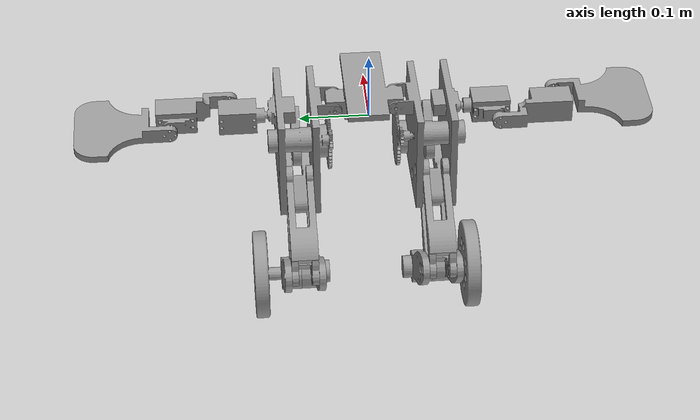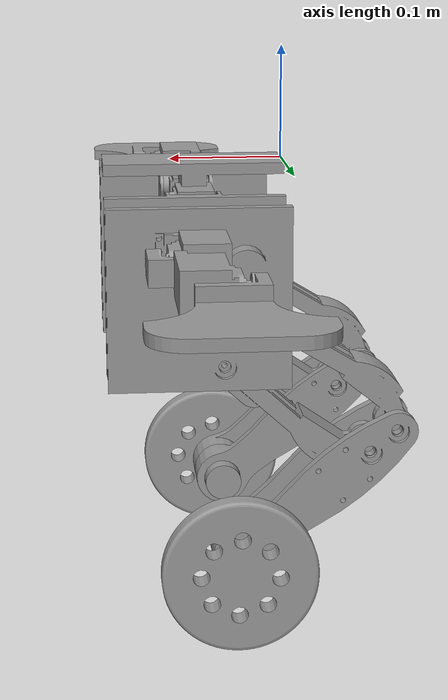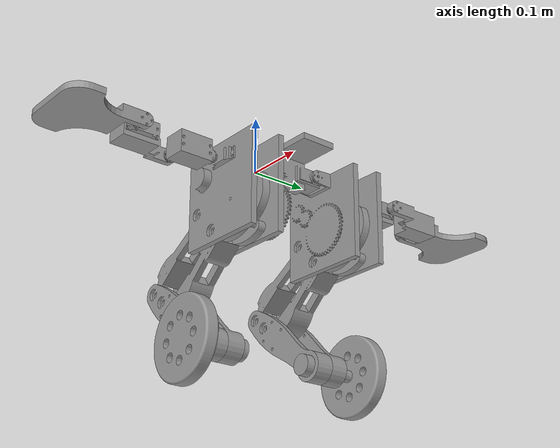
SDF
<sdf version='1.7'>
  <model name='jumpbot'>
    <link name='base_link'>
      <inertial>
        <pose>0.080939 -0 -0.026812 0 -0 0</pose>
        <mass>0.21719</mass>
        <inertia>
          <ixx>6.94e-05</ixx>
          <ixy>8.13532e-21</ixy>
          <ixz>4.23516e-21</ixz>
          <iyy>0.000141175</iyy>
          <iyz>-2.15898e-20</iyz>
          <izz>0.000162678</izz>
        </inertia>
      </inertial>
      <collision name='base_link_collision'>
        <pose>0 0 0 0 -0 0</pose>
        <geometry>
          <mesh>
            <scale>1 1 1</scale>
            <uri>/home/mosiwon/catkin_ws/src/Jumpbot_Simulation/jumpbot_description/meshes/base_link.STL</uri>
          </mesh>
        </geometry>
        <surface>
          <contact>
            <ode/>
          </contact>
          <friction>
            <ode>
              <mu>0.2</mu>
              <mu2>0.2</mu2>
            </ode>
          </friction>
        </surface>
      </collision>
      <visual name='base_link_visual'>
        <pose>0 0 0 0 -0 0</pose>
        <geometry>
          <mesh>
            <scale>1 1 1</scale>
            <uri>/home/mosiwon/catkin_ws/src/Jumpbot_Simulation/jumpbot_description/meshes/base_link.STL</uri>
          </mesh>
        </geometry>
        <material>
          <script>
            <name>Gazebo/Grey</name>
            <uri>file://media/materials/scripts/gazebo.material</uri>
          </script>
        </material>
      </visual>
    </link>
    <joint name='L_baselink_joint' type='revolute'>
      <pose relative_to='base_link'>0.1065 0.045 -0.033 1.5708 0 -1.5708</pose>
      <parent>base_link</parent>
      <child>L_baselink</child>
      <axis>
        <xyz>0 0 1</xyz>
        <limit>
          <lower>-1.5707</lower>
          <upper>1.5707</upper>
          <effort>1</effort>
          <velocity>1</velocity>
        </limit>
        <dynamics>
          <spring_reference>0</spring_reference>
          <spring_stiffness>0</spring_stiffness>
        </dynamics>
      </axis>
    </joint>
    <link name='L_baselink'>
      <pose relative_to='L_baselink_joint'>0 0 0 0 -0 0</pose>
      <inertial>
        <pose>-0.053411 -0.054639 0.03305 0 -0 0</pose>
        <mass>0.573132</mass>
        <inertia>
          <ixx>0.00103571</ixx>
          <ixy>5.37563e-07</ixy>
          <ixz>6.83333e-07</ixz>
          <iyy>0.000616027</iyy>
          <iyz>2.40896e-06</iyz>
          <izz>0.000613586</izz>
        </inertia>
      </inertial>
      <collision name='L_baselink_collision'>
        <pose>0 0 0 0 -0 0</pose>
        <geometry>
          <mesh>
            <scale>1 1 1</scale>
            <uri>/home/mosiwon/catkin_ws/src/Jumpbot_Simulation/jumpbot_description/meshes/L_baselink.STL</uri>
          </mesh>
        </geometry>
        <surface>
          <contact>
            <ode/>
          </contact>
          <friction>
            <ode>
              <mu>0.2</mu>
              <mu2>0.2</mu2>
            </ode>
          </friction>
        </surface>
      </collision>
      <visual name='L_baselink_visual'>
        <pose>0 0 0 0 -0 0</pose>
        <geometry>
          <mesh>
            <scale>1 1 1</scale>
            <uri>/home/mosiwon/catkin_ws/src/Jumpbot_Simulation/jumpbot_description/meshes/L_baselink.STL</uri>
          </mesh>
        </geometry>
        <material>
          <script>
            <name>Gazebo/Grey</name>
            <uri>file://media/materials/scripts/gazebo.material</uri>
          </script>
        </material>
      </visual>
    </link>
    <joint name='L_arm1_joint' type='revolute'>
      <pose relative_to='L_baselink'>-0.1025 -0.0175 0.023998 1.5708 -1.4572 -1.5708</pose>
      <parent>L_baselink</parent>
      <child>L_arm1</child>
      <axis>
        <xyz>0 0 -1</xyz>
        <limit>
          <lower>-1.5707</lower>
          <upper>1.5707</upper>
          <effort>1</effort>
          <velocity>1</velocity>
        </limit>
        <dynamics>
          <spring_reference>0</spring_reference>
          <spring_stiffness>0</spring_stiffness>
        </dynamics>
      </axis>
    </joint>
    <link name='L_arm1'>
      <pose relative_to='L_arm1_joint'>0 0 0 0 -0 0</pose>
      <inertial>
        <pose>-0.005792 -0.000661 0.0393 0 -0 0</pose>
        <mass>0.0772345</mass>
        <inertia>
          <ixx>2.16416e-05</ixx>
          <ixy>-4.84133e-07</ixy>
          <ixz>1.96292e-07</ixz>
          <iyy>2.58317e-05</iyy>
          <iyz>2.23852e-08</iyz>
          <izz>1.51644e-05</izz>
        </inertia>
      </inertial>
      <collision name='L_arm1_collision'>
        <pose>0 0 0 0 -0 0</pose>
        <geometry>
          <mesh>
            <scale>1 1 1</scale>
            <uri>/home/mosiwon/catkin_ws/src/Jumpbot_Simulation/jumpbot_description/meshes/L_arm1.STL</uri>
          </mesh>
        </geometry>
        <surface>
          <contact>
            <ode/>
          </contact>
          <friction>
            <ode>
              <mu>0.2</mu>
              <mu2>0.2</mu2>
            </ode>
          </friction>
        </surface>
      </collision>
      <visual name='L_arm1_visual'>
        <pose>0 0 0 0 -0 0</pose>
        <geometry>
          <mesh>
            <scale>1 1 1</scale>
            <uri>/home/mosiwon/catkin_ws/src/Jumpbot_Simulation/jumpbot_description/meshes/L_arm1.STL</uri>
          </mesh>
        </geometry>
        <material>
          <script>
            <name>Gazebo/Grey</name>
            <uri>file://media/materials/scripts/gazebo.material</uri>
          </script>
        </material>
      </visual>
    </link>
    <joint name='L_arm2_joint' type='revolute'>
      <pose relative_to='L_arm1'>-0.03552 -0.004051 0.05 -3.02804 -1.57079 3.14159</pose>
      <parent>L_arm1</parent>
      <child>L_arm2</child>
      <axis>
        <xyz>0 0 -1</xyz>
        <limit>
          <lower>-1.5707</lower>
          <upper>1.5707</upper>
          <effort>1</effort>
          <velocity>1</velocity>
        </limit>
        <dynamics>
          <spring_reference>0</spring_reference>
          <spring_stiffness>0</spring_stiffness>
        </dynamics>
      </axis>
    </joint>
    <link name='L_arm2'>
      <pose relative_to='L_arm2_joint'>0 0 0 0 -0 0</pose>
      <inertial>
        <pose>0.07421 0 -0.029391 0 -0 0</pose>
        <mass>0.0880267</mass>
        <inertia>
          <ixx>2.12845e-05</ixx>
          <ixy>-6.83235e-16</ixy>
          <ixz>1.03652e-05</ixz>
          <iyy>5.43768e-05</iyy>
          <iyz>2.14005e-16</iyz>
          <izz>4.55078e-05</izz>
        </inertia>
      </inertial>
      <collision name='L_arm2_collision'>
        <pose>0 0 0 0 -0 0</pose>
        <geometry>
          <mesh>
            <scale>1 1 1</scale>
            <uri>/home/mosiwon/catkin_ws/src/Jumpbot_Simulation/jumpbot_description/meshes/L_arm2.STL</uri>
          </mesh>
        </geometry>
        <surface>
          <contact>
            <ode/>
          </contact>
          <friction>
            <ode>
              <mu>0.2</mu>
              <mu2>0.2</mu2>
            </ode>
          </friction>
        </surface>
      </collision>
      <visual name='L_arm2_visual'>
        <pose>0 0 0 0 -0 0</pose>
        <geometry>
          <mesh>
            <scale>1 1 1</scale>
            <uri>/home/mosiwon/catkin_ws/src/Jumpbot_Simulation/jumpbot_description/meshes/L_arm2.STL</uri>
          </mesh>
        </geometry>
        <material>
          <script>
            <name>Gazebo/Grey</name>
            <uri>file://media/materials/scripts/gazebo.material</uri>
          </script>
        </material>
      </visual>
    </link>
    <joint name='L_arm3_joint' type='revolute'>
      <pose relative_to='L_arm2'>0.09 0 -0.063 3.14159 -0 -3.14159</pose>
      <parent>L_arm2</parent>
      <child>L_arm3</child>
      <axis>
        <xyz>0 0 -1</xyz>
        <limit>
          <lower>-1.5707</lower>
          <upper>1.5707</upper>
          <effort>1</effort>
          <velocity>1</velocity>
        </limit>
        <dynamics>
          <spring_reference>0</spring_reference>
          <spring_stiffness>0</spring_stiffness>
        </dynamics>
      </axis>
    </joint>
    <link name='L_arm3'>
      <pose relative_to='L_arm3_joint'>0 0 0 0 -0 0</pose>
      <inertial>
        <pose>-0.084623 -0.00497 -0.01488 0 -0 0</pose>
        <mass>0.0621671</mass>
        <inertia>
          <ixx>6.26827e-05</ixx>
          <ixy>-3.66086e-06</ixy>
          <ixz>-6.94541e-06</ixz>
          <iyy>0.00014217</iyy>
          <iyz>-4.70113e-07</iyz>
          <izz>8.17963e-05</izz>
        </inertia>
      </inertial>
      <collision name='L_arm3_collision'>
        <pose>0 0 0 0 -0 0</pose>
        <geometry>
          <mesh>
            <scale>1 1 1</scale>
            <uri>/home/mosiwon/catkin_ws/src/Jumpbot_Simulation/jumpbot_description/meshes/L_arm3.STL</uri>
          </mesh>
        </geometry>
        <surface>
          <contact>
            <ode/>
          </contact>
          <friction>
            <ode>
              <mu>0.2</mu>
              <mu2>0.2</mu2>
            </ode>
          </friction>
        </surface>
      </collision>
      <visual name='L_arm3_visual'>
        <pose>0 0 0 0 -0 0</pose>
        <geometry>
          <mesh>
            <scale>1 1 1</scale>
            <uri>/home/mosiwon/catkin_ws/src/Jumpbot_Simulation/jumpbot_description/meshes/L_arm3.STL</uri>
          </mesh>
        </geometry>
        <material>
          <script>
            <name>Gazebo/Grey</name>
            <uri>file://media/materials/scripts/gazebo.material</uri>
          </script>
        </material>
      </visual>
      <self_collide>1</self_collide>
    </link>
    <joint name='L_cam_joint' type='revolute'>
      <pose relative_to='L_baselink'>-0.062 -0.091531 -0.00417 1.5708 -1.45725 -1.5708</pose>
      <parent>L_baselink</parent>
      <child>L_cam</child>
      <axis>
        <xyz>0 0 1</xyz>
        <limit>
          <lower>-1e+16</lower>
          <upper>1e+16</upper>
        </limit>
        <dynamics>
          <spring_reference>0</spring_reference>
          <spring_stiffness>0</spring_stiffness>
        </dynamics>
      </axis>
    </joint>
    <link name='L_cam'>
      <pose relative_to='L_cam_joint'>0 0 0 0 -0 0</pose>
      <inertial>
        <pose>-0.012367 -0.003215 -0.006663 0 -0 0</pose>
        <mass>0.0218371</mass>
        <inertia>
          <ixx>6.80512e-06</ixx>
          <ixy>3.75834e-06</ixy>
          <ixz>4.41665e-08</ixz>
          <iyy>9.48114e-06</iyy>
          <iyz>1.13545e-08</iyz>
          <izz>1.567e-05</izz>
        </inertia>
      </inertial>
      <collision name='L_cam_collision'>
        <pose>0 0 0 0 -0 0</pose>
        <geometry>
          <mesh>
            <scale>1 1 1</scale>
            <uri>/home/mosiwon/catkin_ws/src/Jumpbot_Simulation/jumpbot_description/meshes/L_cam.STL</uri>
          </mesh>
        </geometry>
        <surface>
          <contact>
            <ode/>
          </contact>
          <friction>
            <ode>
              <mu>0.2</mu>
              <mu2>0.2</mu2>
            </ode>
          </friction>
        </surface>
      </collision>
      <visual name='L_cam_visual'>
        <pose>0 0 0 0 -0 0</pose>
        <geometry>
          <mesh>
            <scale>1 1 1</scale>
            <uri>/home/mosiwon/catkin_ws/src/Jumpbot_Simulation/jumpbot_description/meshes/L_cam.STL</uri>
          </mesh>
        </geometry>
        <material>
          <script>
            <name>Gazebo/Grey</name>
            <uri>file://media/materials/scripts/gazebo.material</uri>
          </script>
        </material>
      </visual>
      <self_collide>1</self_collide>
    </link>
    <joint name='L_leg2_joint' type='revolute'>
      <pose relative_to='L_baselink'>-0.066 -0.125483 0.0453 1.5708 -1.0069 -1.5708</pose>
      <parent>L_baselink</parent>
      <child>L_leg2</child>
      <axis>
        <xyz>0 0 1</xyz>
        <limit>
          <lower>-3.14159</lower>
          <upper>3.14159</upper>
          <effort>0</effort>
          <velocity>0</velocity>
        </limit>
        <dynamics>
          <spring_reference>0</spring_reference>
          <spring_stiffness>0</spring_stiffness>
        </dynamics>
      </axis>
    </joint>
    <link name='L_leg2'>
      <pose relative_to='L_leg2_joint'>0 0 0 0 -0 0</pose>
      <inertial>
        <pose>0.043357 -0.013979 -0.01 0 -0 0</pose>
        <mass>0.0913705</mass>
        <inertia>
          <ixx>1.59116e-05</ixx>
          <ixy>-9.15274e-06</ixy>
          <ixz>-1.28273e-19</ixz>
          <iyy>0.000107719</iyy>
          <iyz>-1.52578e-20</iyz>
          <izz>0.000115555</izz>
        </inertia>
      </inertial>
      <collision name='L_leg2_collision'>
        <pose>0 0 0 0 -0 0</pose>
        <geometry>
          <mesh>
            <scale>1 1 1</scale>
            <uri>/home/mosiwon/catkin_ws/src/Jumpbot_Simulation/jumpbot_description/meshes/L_leg2.STL</uri>
          </mesh>
        </geometry>
        <surface>
          <contact>
            <ode/>
          </contact>
          <friction>
            <ode>
              <mu>0.2</mu>
              <mu2>0.2</mu2>
            </ode>
          </friction>
        </surface>
      </collision>
      <visual name='L_leg2_visual'>
        <pose>0 0 0 0 -0 0</pose>
        <geometry>
          <mesh>
            <scale>1 1 1</scale>
            <uri>/home/mosiwon/catkin_ws/src/Jumpbot_Simulation/jumpbot_description/meshes/L_leg2.STL</uri>
          </mesh>
        </geometry>
        <material>
          <script>
            <name>Gazebo/Grey</name>
            <uri>file://media/materials/scripts/gazebo.material</uri>
          </script>
        </material>
      </visual>
    </link>
    <joint name='L_leg1_R_joint' type='revolute'>
      <pose relative_to='L_leg2'>0.15 0 0.02 0 -0 0.450348</pose>
      <parent>L_leg2</parent>
      <child>L_leg1_R</child>
      <axis>
        <xyz>0 0 1</xyz>
        <limit>
          <lower>-3.14159</lower>
          <upper>3.14159</upper>
          <effort>0</effort>
          <velocity>0</velocity>
        </limit>
        <dynamics>
          <spring_reference>0</spring_reference>
          <spring_stiffness>0</spring_stiffness>
        </dynamics>
      </axis>
    </joint>
    <link name='L_leg1_R'>
      <pose relative_to='L_leg1_R_joint'>0 0 0 0 -0 0</pose>
      <inertial>
        <pose>-0.09113 -0.091721 -0.040687 0 -0 0</pose>
        <mass>0.233562</mass>
        <inertia>
          <ixx>0.000296577</ixx>
          <ixy>-0.00018317</ixy>
          <ixz>3.50787e-05</ixz>
          <iyy>0.000294209</iyy>
          <iyz>3.53061e-05</iyz>
          <izz>0.00041332</izz>
        </inertia>
      </inertial>
      <collision name='L_leg1_R_collision'>
        <pose>0 0 0 0 -0 0</pose>
        <geometry>
          <mesh>
            <scale>1 1 1</scale>
            <uri>/home/mosiwon/catkin_ws/src/Jumpbot_Simulation/jumpbot_description/meshes/L_leg1_R.STL</uri>
          </mesh>
        </geometry>
        <surface>
          <contact>
            <ode/>
          </contact>
          <friction>
            <ode>
              <mu>0.2</mu>
              <mu2>0.2</mu2>
            </ode>
          </friction>
        </surface>
      </collision>
      <collision name='L_leg1_R_fixed_joint_lump__L_motor_collision_1'>
        <pose>-0.105723 -0.106408 0.042 0 -0 0</pose>
        <geometry>
          <mesh>
            <scale>1 1 1</scale>
            <uri>/home/mosiwon/catkin_ws/src/Jumpbot_Simulation/jumpbot_description/meshes/L_motor.STL</uri>
          </mesh>
        </geometry>
        <surface>
          <contact>
            <ode/>
          </contact>
          <friction>
            <ode>
              <mu>0.2</mu>
              <mu2>0.2</mu2>
            </ode>
          </friction>
        </surface>
      </collision>
      <visual name='L_leg1_R_visual'>
        <pose>0 0 0 0 -0 0</pose>
        <geometry>
          <mesh>
            <scale>1 1 1</scale>
            <uri>/home/mosiwon/catkin_ws/src/Jumpbot_Simulation/jumpbot_description/meshes/L_leg1_R.STL</uri>
          </mesh>
        </geometry>
        <material>
          <script>
            <name>Gazebo/Grey</name>
            <uri>file://media/materials/scripts/gazebo.material</uri>
          </script>
        </material>
      </visual>
      <visual name='L_leg1_R_fixed_joint_lump__L_motor_visual_1'>
        <pose>-0.105723 -0.106408 0.042 0 -0 0</pose>
        <geometry>
          <mesh>
            <scale>1 1 1</scale>
            <uri>/home/mosiwon/catkin_ws/src/Jumpbot_Simulation/jumpbot_description/meshes/L_motor.STL</uri>
          </mesh>
        </geometry>
        <material>
          <script>
            <name>Gazebo/Grey</name>
            <uri>file://media/materials/scripts/gazebo.material</uri>
          </script>
        </material>
      </visual>
    </link>
    <joint name='L_wheel_joint' type='revolute'>
      <pose relative_to='L_leg1_R'>-0.105723 -0.106408 0.042 0 -0 0</pose>
      <parent>L_leg1_R</parent>
      <child>L_wheel</child>
      <axis>
        <xyz>0 0 -1</xyz>
        <limit>
          <lower>-1e+16</lower>
          <upper>1e+16</upper>
        </limit>
        <dynamics>
          <spring_reference>0</spring_reference>
          <spring_stiffness>0</spring_stiffness>
        </dynamics>
      </axis>
    </joint>
    <link name='L_wheel'>
      <pose relative_to='L_wheel_joint'>0 0 0 0 -0 0</pose>
      <inertial>
        <pose>0 -0 -0.010926 0 -0 0</pose>
        <mass>0.263999</mass>
        <inertia>
          <ixx>0.000320343</ixx>
          <ixy>1.39363e-19</ixy>
          <ixz>-6.94398e-16</ixz>
          <iyy>0.000320343</iyy>
          <iyz>6.08514e-15</iyz>
          <izz>0.000616989</izz>
        </inertia>
      </inertial>
      <collision name='L_wheel_collision'>
        <pose>0 0 0 0 -0 0</pose>
        <geometry>
          <mesh>
            <scale>1 1 1</scale>
            <uri>/home/mosiwon/catkin_ws/src/Jumpbot_Simulation/jumpbot_description/meshes/L_wheel.STL</uri>
          </mesh>
        </geometry>
        <surface>
          <contact>
            <ode/>
          </contact>
          <friction>
            <ode>
              <mu>0.2</mu>
              <mu2>0.2</mu2>
            </ode>
          </friction>
        </surface>
      </collision>
      <visual name='L_wheel_visual'>
        <pose>0 0 0 0 -0 0</pose>
        <geometry>
          <mesh>
            <scale>1 1 1</scale>
            <uri>/home/mosiwon/catkin_ws/src/Jumpbot_Simulation/jumpbot_description/meshes/L_wheel.STL</uri>
          </mesh>
        </geometry>
        <material>
          <script>
            <name>Gazebo/Grey</name>
            <uri>file://media/materials/scripts/gazebo.material</uri>
          </script>
        </material>
      </visual>
    </link>
    <joint name='L_leg3_joint' type='revolute'>
      <pose relative_to='L_baselink'>-0.066 -0.088353 0.082416 1.5708 -0.85393 -1.5708</pose>
      <parent>L_baselink</parent>
      <child>L_leg3</child>
      <axis>
        <xyz>0 0 -1</xyz>
        <limit>
          <lower>-3.14159</lower>
          <upper>3.14159</upper>
          <effort>0</effort>
          <velocity>0</velocity>
        </limit>
        <dynamics>
          <spring_reference>0</spring_reference>
          <spring_stiffness>0</spring_stiffness>
        </dynamics>
      </axis>
    </joint>
    <link name='L_leg3'>
      <pose relative_to='L_leg3_joint'>0 0 0 0 -0 0</pose>
      <inertial>
        <pose>0.087332 0.011068 -0.01 0 -0 0</pose>
        <mass>0.0493853</mass>
        <inertia>
          <ixx>5.91254e-06</ixx>
          <ixy>-3.96516e-06</ixy>
          <ixz>9.87009e-17</ixz>
          <iyy>0.000100372</iyy>
          <iyz>5.39057e-17</iyz>
          <izz>0.000102536</izz>
        </inertia>
      </inertial>
      <collision name='L_leg3_collision'>
        <pose>0 0 0 0 -0 0</pose>
        <geometry>
          <mesh>
            <scale>1 1 1</scale>
            <uri>/home/mosiwon/catkin_ws/src/Jumpbot_Simulation/jumpbot_description/meshes/L_leg3.STL</uri>
          </mesh>
        </geometry>
        <surface>
          <contact>
            <ode/>
          </contact>
          <friction>
            <ode>
              <mu>0.2</mu>
              <mu2>0.2</mu2>
            </ode>
          </friction>
        </surface>
      </collision>
      <visual name='L_leg3_visual'>
        <pose>0 0 0 0 -0 0</pose>
        <geometry>
          <mesh>
            <scale>1 1 1</scale>
            <uri>/home/mosiwon/catkin_ws/src/Jumpbot_Simulation/jumpbot_description/meshes/L_leg3.STL</uri>
          </mesh>
        </geometry>
        <material>
          <script>
            <name>Gazebo/Grey</name>
            <uri>file://media/materials/scripts/gazebo.material</uri>
          </script>
        </material>
      </visual>
    </link>
    <joint name='L_leg1_L_joint' type='revolute'>
      <pose relative_to='L_leg3'>0.15 0 -0.04 0 0 -1.74965</pose>
      <parent>L_leg3</parent>
      <child>L_leg1_L</child>
      <axis>
        <xyz>0 0 -1</xyz>
        <limit>
          <lower>-3.14159</lower>
          <upper>3.14159</upper>
          <effort>0</effort>
          <velocity>0</velocity>
        </limit>
        <dynamics>
          <spring_reference>0</spring_reference>
          <spring_stiffness>0</spring_stiffness>
        </dynamics>
      </axis>
    </joint>
    <link name='L_leg1_L'>
      <pose relative_to='L_leg1_L_joint'>0 0 0 0 -0 0</pose>
      <inertial>
        <pose>0.103257 -0 0.052434 0 -0 0</pose>
        <mass>0.0488234</mass>
        <inertia>
          <ixx>1.13633e-05</ixx>
          <ixy>3.35348e-16</ixy>
          <ixz>8.4615e-06</ixz>
          <iyy>0.000183746</iyy>
          <iyz>-1.3433e-16</iyz>
          <izz>0.000190643</izz>
        </inertia>
      </inertial>
      <collision name='L_leg1_L_collision'>
        <pose>0 0 0 0 -0 0</pose>
        <geometry>
          <mesh>
            <scale>1 1 1</scale>
            <uri>/home/mosiwon/catkin_ws/src/Jumpbot_Simulation/jumpbot_description/meshes/L_leg1_L.STL</uri>
          </mesh>
        </geometry>
        <surface>
          <contact>
            <ode/>
          </contact>
          <friction>
            <ode>
              <mu>0.2</mu>
              <mu2>0.2</mu2>
            </ode>
          </friction>
        </surface>
      </collision>
      <visual name='L_leg1_L_visual'>
        <pose>0 0 0 0 -0 0</pose>
        <geometry>
          <mesh>
            <scale>1 1 1</scale>
            <uri>/home/mosiwon/catkin_ws/src/Jumpbot_Simulation/jumpbot_description/meshes/L_leg1_L.STL</uri>
          </mesh>
        </geometry>
        <material>
          <script>
            <name>Gazebo/Grey</name>
            <uri>file://media/materials/scripts/gazebo.material</uri>
          </script>
        </material>
      </visual>
    </link>
    <joint name='R_baselink_joint' type='revolute'>
      <pose relative_to='base_link'>0.1065 -0.045 -0.033 1.5708 0 -1.5708</pose>
      <parent>base_link</parent>
      <child>R_baselink</child>
      <axis>
        <xyz>0 0 1</xyz>
        <limit>
          <lower>-1.5707</lower>
          <upper>1.5707</upper>
          <effort>1</effort>
          <velocity>1</velocity>
        </limit>
        <dynamics>
          <spring_reference>0</spring_reference>
          <spring_stiffness>0</spring_stiffness>
        </dynamics>
      </axis>
    </joint>
    <link name='R_baselink'>
      <pose relative_to='R_baselink_joint'>0 0 0 0 -0 0</pose>
      <inertial>
        <pose>0.053411 -0.054626 0.033041 0 -0 0</pose>
        <mass>0.573138</mass>
        <inertia>
          <ixx>0.00103579</ixx>
          <ixy>-5.37742e-07</ixy>
          <ixz>-6.8322e-07</ixz>
          <iyy>0.000615653</iyy>
          <iyz>2.20571e-06</iyz>
          <izz>0.000614044</izz>
        </inertia>
      </inertial>
      <collision name='R_baselink_collision'>
        <pose>0 0 0 0 -0 0</pose>
        <geometry>
          <mesh>
            <scale>1 1 1</scale>
            <uri>/home/mosiwon/catkin_ws/src/Jumpbot_Simulation/jumpbot_description/meshes/R_baselink.STL</uri>
          </mesh>
        </geometry>
        <surface>
          <contact>
            <ode/>
          </contact>
          <friction>
            <ode>
              <mu>0.2</mu>
              <mu2>0.2</mu2>
            </ode>
          </friction>
        </surface>
      </collision>
      <visual name='R_baselink_visual'>
        <pose>0 0 0 0 -0 0</pose>
        <geometry>
          <mesh>
            <scale>1 1 1</scale>
            <uri>/home/mosiwon/catkin_ws/src/Jumpbot_Simulation/jumpbot_description/meshes/R_baselink.STL</uri>
          </mesh>
        </geometry>
        <material>
          <script>
            <name>Gazebo/Grey</name>
            <uri>file://media/materials/scripts/gazebo.material</uri>
          </script>
        </material>
      </visual>
    </link>
    <joint name='R_arm1_joint' type='revolute'>
      <pose relative_to='R_baselink'>0.1025 -0.0175 0.023998 1.5708 -1.4572 -1.5708</pose>
      <parent>R_baselink</parent>
      <child>R_arm1</child>
      <axis>
        <xyz>0 0 1</xyz>
        <limit>
          <lower>-1.5707</lower>
          <upper>1.5707</upper>
          <effort>1</effort>
          <velocity>1</velocity>
        </limit>
        <dynamics>
          <spring_reference>0</spring_reference>
          <spring_stiffness>0</spring_stiffness>
        </dynamics>
      </axis>
    </joint>
    <link name='R_arm1'>
      <pose relative_to='R_arm1_joint'>0 0 0 0 -0 0</pose>
      <inertial>
        <pose>0.005792 0.000661 -0.0393 0 -0 0</pose>
        <mass>0.0772345</mass>
        <inertia>
          <ixx>2.16416e-05</ixx>
          <ixy>-4.84133e-07</ixy>
          <ixz>1.96292e-07</ixz>
          <iyy>2.58317e-05</iyy>
          <iyz>2.23852e-08</iyz>
          <izz>1.51644e-05</izz>
        </inertia>
      </inertial>
      <collision name='R_arm1_collision'>
        <pose>0 0 0 0 -0 0</pose>
        <geometry>
          <mesh>
            <scale>1 1 1</scale>
            <uri>/home/mosiwon/catkin_ws/src/Jumpbot_Simulation/jumpbot_description/meshes/R_arm1.STL</uri>
          </mesh>
        </geometry>
        <surface>
          <contact>
            <ode/>
          </contact>
          <friction>
            <ode>
              <mu>0.2</mu>
              <mu2>0.2</mu2>
            </ode>
          </friction>
        </surface>
      </collision>
      <visual name='R_arm1_visual'>
        <pose>0 0 0 0 -0 0</pose>
        <geometry>
          <mesh>
            <scale>1 1 1</scale>
            <uri>/home/mosiwon/catkin_ws/src/Jumpbot_Simulation/jumpbot_description/meshes/R_arm1.STL</uri>
          </mesh>
        </geometry>
        <material>
          <script>
            <name>Gazebo/Grey</name>
            <uri>file://media/materials/scripts/gazebo.material</uri>
          </script>
        </material>
      </visual>
    </link>
    <joint name='R_arm2_joint' type='revolute'>
      <pose relative_to='R_arm1'>0.03552 0.004051 -0.05 3.02804 1.57079 3.14159</pose>
      <parent>R_arm1</parent>
      <child>R_arm2</child>
      <axis>
        <xyz>0 0 -1</xyz>
        <limit>
          <lower>-1.5707</lower>
          <upper>1.5707</upper>
          <effort>1</effort>
          <velocity>1</velocity>
        </limit>
        <dynamics>
          <spring_reference>0</spring_reference>
          <spring_stiffness>0</spring_stiffness>
        </dynamics>
      </axis>
    </joint>
    <link name='R_arm2'>
      <pose relative_to='R_arm2_joint'>0 0 0 0 -0 0</pose>
      <inertial>
        <pose>0.07421 -0 -0.029391 0 -0 0</pose>
        <mass>0.0880267</mass>
        <inertia>
          <ixx>2.12845e-05</ixx>
          <ixy>6.83248e-16</ixy>
          <ixz>1.03652e-05</ixz>
          <iyy>5.43768e-05</iyy>
          <iyz>-2.14007e-16</iyz>
          <izz>4.55078e-05</izz>
        </inertia>
      </inertial>
      <collision name='R_arm2_collision'>
        <pose>0 0 0 0 -0 0</pose>
        <geometry>
          <mesh>
            <scale>1 1 1</scale>
            <uri>/home/mosiwon/catkin_ws/src/Jumpbot_Simulation/jumpbot_description/meshes/R_arm2.STL</uri>
          </mesh>
        </geometry>
        <surface>
          <contact>
            <ode/>
          </contact>
          <friction>
            <ode>
              <mu>0.2</mu>
              <mu2>0.2</mu2>
            </ode>
          </friction>
        </surface>
      </collision>
      <visual name='R_arm2_visual'>
        <pose>0 0 0 0 -0 0</pose>
        <geometry>
          <mesh>
            <scale>1 1 1</scale>
            <uri>/home/mosiwon/catkin_ws/src/Jumpbot_Simulation/jumpbot_description/meshes/R_arm2.STL</uri>
          </mesh>
        </geometry>
        <material>
          <script>
            <name>Gazebo/Grey</name>
            <uri>file://media/materials/scripts/gazebo.material</uri>
          </script>
        </material>
      </visual>
    </link>
    <joint name='R_arm3_joint' type='revolute'>
      <pose relative_to='R_arm2'>0.09 0 -0.063 3.14159 -0 3.14159</pose>
      <parent>R_arm2</parent>
      <child>R_arm3</child>
      <axis>
        <xyz>0 0 -1</xyz>
        <limit>
          <lower>-1.5707</lower>
          <upper>1.5707</upper>
          <effort>1</effort>
          <velocity>1</velocity>
        </limit>
        <dynamics>
          <spring_reference>0</spring_reference>
          <spring_stiffness>0</spring_stiffness>
        </dynamics>
      </axis>
    </joint>
    <link name='R_arm3'>
      <pose relative_to='R_arm3_joint'>0 0 0 0 -0 0</pose>
      <inertial>
        <pose>-0.084623 -0.00497 -0.01488 0 -0 0</pose>
        <mass>0.0621671</mass>
        <inertia>
          <ixx>6.26827e-05</ixx>
          <ixy>-3.66086e-06</ixy>
          <ixz>-6.94541e-06</ixz>
          <iyy>0.00014217</iyy>
          <iyz>-4.70113e-07</iyz>
          <izz>8.17963e-05</izz>
        </inertia>
      </inertial>
      <collision name='R_arm3_collision'>
        <pose>0 0 0 0 -0 0</pose>
        <geometry>
          <mesh>
            <scale>1 1 1</scale>
            <uri>/home/mosiwon/catkin_ws/src/Jumpbot_Simulation/jumpbot_description/meshes/R_arm3.STL</uri>
          </mesh>
        </geometry>
        <surface>
          <contact>
            <ode/>
          </contact>
          <friction>
            <ode>
              <mu>0.2</mu>
              <mu2>0.2</mu2>
            </ode>
          </friction>
        </surface>
      </collision>
      <visual name='R_arm3_visual'>
        <pose>0 0 0 0 -0 0</pose>
        <geometry>
          <mesh>
            <scale>1 1 1</scale>
            <uri>/home/mosiwon/catkin_ws/src/Jumpbot_Simulation/jumpbot_description/meshes/R_arm3.STL</uri>
          </mesh>
        </geometry>
        <material>
          <script>
            <name>Gazebo/Grey</name>
            <uri>file://media/materials/scripts/gazebo.material</uri>
          </script>
        </material>
      </visual>
      <self_collide>1</self_collide>
    </link>
    <joint name='R_cam_joint' type='revolute'>
      <pose relative_to='R_baselink'>0.049 -0.091531 -0.00417 1.5708 -1.45725 -1.5708</pose>
      <parent>R_baselink</parent>
      <child>R_cam</child>
      <axis>
        <xyz>0 0 1</xyz>
        <limit>
          <lower>-1e+16</lower>
          <upper>1e+16</upper>
        </limit>
        <dynamics>
          <spring_reference>0</spring_reference>
          <spring_stiffness>0</spring_stiffness>
        </dynamics>
      </axis>
    </joint>
    <link name='R_cam'>
      <pose relative_to='R_cam_joint'>0 0 0 0 -0 0</pose>
      <inertial>
        <pose>-0.012367 -0.003215 -0.006337 0 -0 0</pose>
        <mass>0.0218371</mass>
        <inertia>
          <ixx>6.80443e-06</ixx>
          <ixy>3.75802e-06</ixy>
          <ixz>-4.40765e-08</ixz>
          <iyy>9.48117e-06</iyy>
          <iyz>-1.14659e-08</iyz>
          <izz>1.56693e-05</izz>
        </inertia>
      </inertial>
      <collision name='R_cam_collision'>
        <pose>0 0 0 0 -0 0</pose>
        <geometry>
          <mesh>
            <scale>1 1 1</scale>
            <uri>/home/mosiwon/catkin_ws/src/Jumpbot_Simulation/jumpbot_description/meshes/R_cam.STL</uri>
          </mesh>
        </geometry>
        <surface>
          <contact>
            <ode/>
          </contact>
          <friction>
            <ode>
              <mu>0.2</mu>
              <mu2>0.2</mu2>
            </ode>
          </friction>
        </surface>
      </collision>
      <visual name='R_cam_visual'>
        <pose>0 0 0 0 -0 0</pose>
        <geometry>
          <mesh>
            <scale>1 1 1</scale>
            <uri>/home/mosiwon/catkin_ws/src/Jumpbot_Simulation/jumpbot_description/meshes/R_cam.STL</uri>
          </mesh>
        </geometry>
        <material>
          <script>
            <name>Gazebo/Grey</name>
            <uri>file://media/materials/scripts/gazebo.material</uri>
          </script>
        </material>
      </visual>
      <self_collide>1</self_collide>
    </link>
    <joint name='R_leg2_joint' type='revolute'>
      <pose relative_to='R_baselink'>0.066 -0.125483 0.0453 1.5708 -1.00668 -1.5708</pose>
      <parent>R_baselink</parent>
      <child>R_leg2</child>
      <axis>
        <xyz>0 0 1</xyz>
        <limit>
          <lower>-3.14159</lower>
          <upper>3.14159</upper>
          <effort>0</effort>
          <velocity>0</velocity>
        </limit>
        <dynamics>
          <spring_reference>0</spring_reference>
          <spring_stiffness>0</spring_stiffness>
        </dynamics>
      </axis>
    </joint>
    <link name='R_leg2'>
      <pose relative_to='R_leg2_joint'>0 0 0 0 -0 0</pose>
      <inertial>
        <pose>0.043357 -0.013979 0.01 0 -0 0</pose>
        <mass>0.0913705</mass>
        <inertia>
          <ixx>1.59116e-05</ixx>
          <ixy>-9.15274e-06</ixy>
          <ixz>-2.39495e-20</ixz>
          <iyy>0.000107719</iyy>
          <iyz>-2.21816e-20</iyz>
          <izz>0.000115555</izz>
        </inertia>
      </inertial>
      <collision name='R_leg2_collision'>
        <pose>0 0 0 0 -0 0</pose>
        <geometry>
          <mesh>
            <scale>1 1 1</scale>
            <uri>/home/mosiwon/catkin_ws/src/Jumpbot_Simulation/jumpbot_description/meshes/R_leg2.STL</uri>
          </mesh>
        </geometry>
        <surface>
          <contact>
            <ode/>
          </contact>
          <friction>
            <ode>
              <mu>0.2</mu>
              <mu2>0.2</mu2>
            </ode>
          </friction>
        </surface>
      </collision>
      <visual name='R_leg2_visual'>
        <pose>0 0 0 0 -0 0</pose>
        <geometry>
          <mesh>
            <scale>1 1 1</scale>
            <uri>/home/mosiwon/catkin_ws/src/Jumpbot_Simulation/jumpbot_description/meshes/R_leg2.STL</uri>
          </mesh>
        </geometry>
        <material>
          <script>
            <name>Gazebo/Grey</name>
            <uri>file://media/materials/scripts/gazebo.material</uri>
          </script>
        </material>
      </visual>
      <dynamics>
        <spring_stiffness>2500</spring_stiffness>
        <spring_reference>0.06</spring_reference>
        <damping>20.0</damping>
        <friction>0.75</friction>
      </dynamics>
      <use_parent_model_frame>0</use_parent_model_frame>
      <physics>
        <ode>
          <implicit_spring_damper>1</implicit_spring_damper>
          <cfm_damping>1</cfm_damping>
          <limit>
            <cfm>0</cfm>
            <erp>0.2</erp>
          </limit>
        </ode>
      </physics>
    </link>
    <joint name='R_leg1_L_joint' type='revolute'>
      <pose relative_to='R_leg2'>0.15 0 0.04 0 -0 0.450565</pose>
      <parent>R_leg2</parent>
      <child>R_leg1_L</child>
      <axis>
        <xyz>0 0 1</xyz>
        <limit>
          <lower>-3.14159</lower>
          <upper>3.14159</upper>
          <effort>0</effort>
          <velocity>0</velocity>
        </limit>
        <dynamics>
          <spring_reference>0</spring_reference>
          <spring_stiffness>0</spring_stiffness>
        </dynamics>
      </axis>
    </joint>
    <link name='R_leg1_L'>
      <pose relative_to='R_leg1_L_joint'>0 0 0 0 -0 0</pose>
      <inertial>
        <pose>-0.091111 -0.09174 -0.019313 0 -0 0</pose>
        <mass>0.233562</mass>
        <inertia>
          <ixx>0.000296654</ixx>
          <ixy>-0.000183168</ixy>
          <ixz>-3.50701e-05</ixz>
          <iyy>0.000294129</iyy>
          <iyz>-3.53142e-05</iyz>
          <izz>0.000413317</izz>
        </inertia>
      </inertial>
      <collision name='R_leg1_L_collision'>
        <pose>0 0 0 0 -0 0</pose>
        <geometry>
          <mesh>
            <scale>1 1 1</scale>
            <uri>/home/mosiwon/catkin_ws/src/Jumpbot_Simulation/jumpbot_description/meshes/R_leg1_L.STL</uri>
          </mesh>
        </geometry>
        <surface>
          <contact>
            <ode/>
          </contact>
          <friction>
            <ode>
              <mu>0.2</mu>
              <mu2>0.2</mu2>
            </ode>
          </friction>
        </surface>
      </collision>
      <collision name='R_leg1_L_fixed_joint_lump__R_motor_collision_1'>
        <pose>-0.1057 -0.10643 -0.102 0 -0 0</pose>
        <geometry>
          <mesh>
            <scale>1 1 1</scale>
            <uri>/home/mosiwon/catkin_ws/src/Jumpbot_Simulation/jumpbot_description/meshes/R_motor.STL</uri>
          </mesh>
        </geometry>
        <surface>
          <contact>
            <ode/>
          </contact>
          <friction>
            <ode>
              <mu>0.2</mu>
              <mu2>0.2</mu2>
            </ode>
          </friction>
        </surface>
      </collision>
      <visual name='R_leg1_L_visual'>
        <pose>0 0 0 0 -0 0</pose>
        <geometry>
          <mesh>
            <scale>1 1 1</scale>
            <uri>/home/mosiwon/catkin_ws/src/Jumpbot_Simulation/jumpbot_description/meshes/R_leg1_L.STL</uri>
          </mesh>
        </geometry>
        <material>
          <script>
            <name>Gazebo/Grey</name>
            <uri>file://media/materials/scripts/gazebo.material</uri>
          </script>
        </material>
      </visual>
      <visual name='R_leg1_L_fixed_joint_lump__R_motor_visual_1'>
        <pose>-0.1057 -0.10643 -0.102 0 -0 0</pose>
        <geometry>
          <mesh>
            <scale>1 1 1</scale>
            <uri>/home/mosiwon/catkin_ws/src/Jumpbot_Simulation/jumpbot_description/meshes/R_motor.STL</uri>
          </mesh>
        </geometry>
        <material>
          <script>
            <name>Gazebo/Grey</name>
            <uri>file://media/materials/scripts/gazebo.material</uri>
          </script>
        </material>
      </visual>
    </link>
    <joint name='R_wheel_joint' type='revolute'>
      <pose relative_to='R_leg1_L'>-0.1057 -0.10643 -0.102 0 -0 0</pose>
      <parent>R_leg1_L</parent>
      <child>R_wheel</child>
      <axis>
        <xyz>0 0 1</xyz>
        <limit>
          <lower>-1e+16</lower>
          <upper>1e+16</upper>
        </limit>
        <dynamics>
          <spring_reference>0</spring_reference>
          <spring_stiffness>0</spring_stiffness>
        </dynamics>
      </axis>
    </joint>
    <link name='R_wheel'>
      <pose relative_to='R_wheel_joint'>0 0 0 0 -0 0</pose>
      <inertial>
        <pose>-0 0 0.010926 0 -0 0</pose>
        <mass>0.263999</mass>
        <inertia>
          <ixx>0.000320343</ixx>
          <ixy>-1.61655e-19</ixy>
          <ixz>-6.94631e-16</ixz>
          <iyy>0.000320343</iyy>
          <iyz>6.08536e-15</iyz>
          <izz>0.000616989</izz>
        </inertia>
      </inertial>
      <collision name='R_wheel_collision'>
        <pose>0 0 0 0 -0 0</pose>
        <geometry>
          <mesh>
            <scale>1 1 1</scale>
            <uri>/home/mosiwon/catkin_ws/src/Jumpbot_Simulation/jumpbot_description/meshes/R_wheel.STL</uri>
          </mesh>
        </geometry>
        <surface>
          <contact>
            <ode/>
          </contact>
          <friction>
            <ode>
              <mu>0.2</mu>
              <mu2>0.2</mu2>
            </ode>
          </friction>
        </surface>
      </collision>
      <visual name='R_wheel_visual'>
        <pose>0 0 0 0 -0 0</pose>
        <geometry>
          <mesh>
            <scale>1 1 1</scale>
            <uri>/home/mosiwon/catkin_ws/src/Jumpbot_Simulation/jumpbot_description/meshes/R_wheel.STL</uri>
          </mesh>
        </geometry>
        <material>
          <script>
            <name>Gazebo/Grey</name>
            <uri>file://media/materials/scripts/gazebo.material</uri>
          </script>
        </material>
      </visual>
    </link>
    <joint name='R_leg3_joint' type='revolute'>
      <pose relative_to='R_baselink'>0.066 -0.088353 0.082416 1.5708 -0.853722 -1.5708</pose>
      <parent>R_baselink</parent>
      <child>R_leg3</child>
      <axis>
        <xyz>0 0 -1</xyz>
        <limit>
          <lower>-3.14159</lower>
          <upper>3.14159</upper>
          <effort>0</effort>
          <velocity>0</velocity>
        </limit>
        <dynamics>
          <spring_reference>0</spring_reference>
          <spring_stiffness>0</spring_stiffness>
        </dynamics>
      </axis>
    </joint>
    <link name='R_leg3'>
      <pose relative_to='R_leg3_joint'>0 0 0 0 -0 0</pose>
      <inertial>
        <pose>0.087332 0.011068 0.01 0 -0 0</pose>
        <mass>0.0493853</mass>
        <inertia>
          <ixx>5.91254e-06</ixx>
          <ixy>-3.96516e-06</ixy>
          <ixz>1.57801e-20</ixz>
          <iyy>0.000100372</iyy>
          <iyz>4.39805e-21</iyz>
          <izz>0.000102536</izz>
        </inertia>
      </inertial>
      <collision name='R_leg3_collision'>
        <pose>0 0 0 0 -0 0</pose>
        <geometry>
          <mesh>
            <scale>1 1 1</scale>
            <uri>/home/mosiwon/catkin_ws/src/Jumpbot_Simulation/jumpbot_description/meshes/R_leg3.STL</uri>
          </mesh>
        </geometry>
        <surface>
          <contact>
            <ode/>
          </contact>
          <friction>
            <ode>
              <mu>0.2</mu>
              <mu2>0.2</mu2>
            </ode>
          </friction>
        </surface>
      </collision>
      <visual name='R_leg3_visual'>
        <pose>0 0 0 0 -0 0</pose>
        <geometry>
          <mesh>
            <scale>1 1 1</scale>
            <uri>/home/mosiwon/catkin_ws/src/Jumpbot_Simulation/jumpbot_description/meshes/R_leg3.STL</uri>
          </mesh>
        </geometry>
        <material>
          <script>
            <name>Gazebo/Grey</name>
            <uri>file://media/materials/scripts/gazebo.material</uri>
          </script>
        </material>
      </visual>
    </link>
    <joint name='R_leg1_R_joint' type='revolute'>
      <pose relative_to='R_leg3'>0.15 0 0.04 0 0 -1.74927</pose>
      <parent>R_leg3</parent>
      <child>R_leg1_R</child>
      <axis>
        <xyz>0 0 -1</xyz>
        <limit>
          <lower>-3.14159</lower>
          <upper>3.14159</upper>
          <effort>0</effort>
          <velocity>0</velocity>
        </limit>
        <dynamics>
          <spring_reference>0</spring_reference>
          <spring_stiffness>0</spring_stiffness>
        </dynamics>
      </axis>
    </joint>
    <link name='R_leg1_R'>
      <pose relative_to='R_leg1_R_joint'>0 0 0 0 -0 0</pose>
      <inertial>
        <pose>0.103257 -0 -0.052434 0 -0 0</pose>
        <mass>0.0488234</mass>
        <inertia>
          <ixx>1.13633e-05</ixx>
          <ixy>1.05326e-12</ixy>
          <ixz>-8.4615e-06</ixz>
          <iyy>0.000183746</iyy>
          <iyz>5.16997e-14</iyz>
          <izz>0.000190643</izz>
        </inertia>
      </inertial>
      <collision name='R_leg1_R_collision'>
        <pose>0 0 0 0 -0 0</pose>
        <geometry>
          <mesh>
            <scale>1 1 1</scale>
            <uri>/home/mosiwon/catkin_ws/src/Jumpbot_Simulation/jumpbot_description/meshes/R_leg1_R.STL</uri>
          </mesh>
        </geometry>
        <surface>
          <contact>
            <ode/>
          </contact>
          <friction>
            <ode>
              <mu>0.2</mu>
              <mu2>0.2</mu2>
            </ode>
          </friction>
        </surface>
      </collision>
      <visual name='R_leg1_R_visual'>
        <pose>0 0 0 0 -0 0</pose>
        <geometry>
          <mesh>
            <scale>1 1 1</scale>
            <uri>/home/mosiwon/catkin_ws/src/Jumpbot_Simulation/jumpbot_description/meshes/R_leg1_R.STL</uri>
          </mesh>
        </geometry>
        <material>
          <script>
            <name>Gazebo/Grey</name>
            <uri>file://media/materials/scripts/gazebo.material</uri>
          </script>
        </material>
      </visual>
    </link>
    <joint name='L_motorfixed_joint' type='fixed'>
      <pose>0.18 -0 0.102 0 -0 2.353</pose>
      <parent>L_leg1_L</parent>
      <child>L_leg1_R</child>
    </joint>
    <joint name='R_motorfixed_joint' type='fixed'>
      <pose>0.18 -0 -0.102 0 -0 2.353</pose>
      <parent>R_leg1_R</parent>
      <child>R_leg1_L</child>
    </joint>

    <frame name='L_motor_joint' attached_to='L_leg1_R'>
      <pose>-0.105723 -0.106408 0.042 0 -0 0</pose>
    </frame>
    <frame name='L_motor' attached_to='L_motor_joint'/>
    <frame name='R_motor_joint' attached_to='R_leg1_L'>
      <pose>-0.1057 -0.10643 -0.102 0 -0 0</pose>
    </frame>
    <frame name='R_motor' attached_to='R_motor_joint'/>
  </model>
</sdf>
